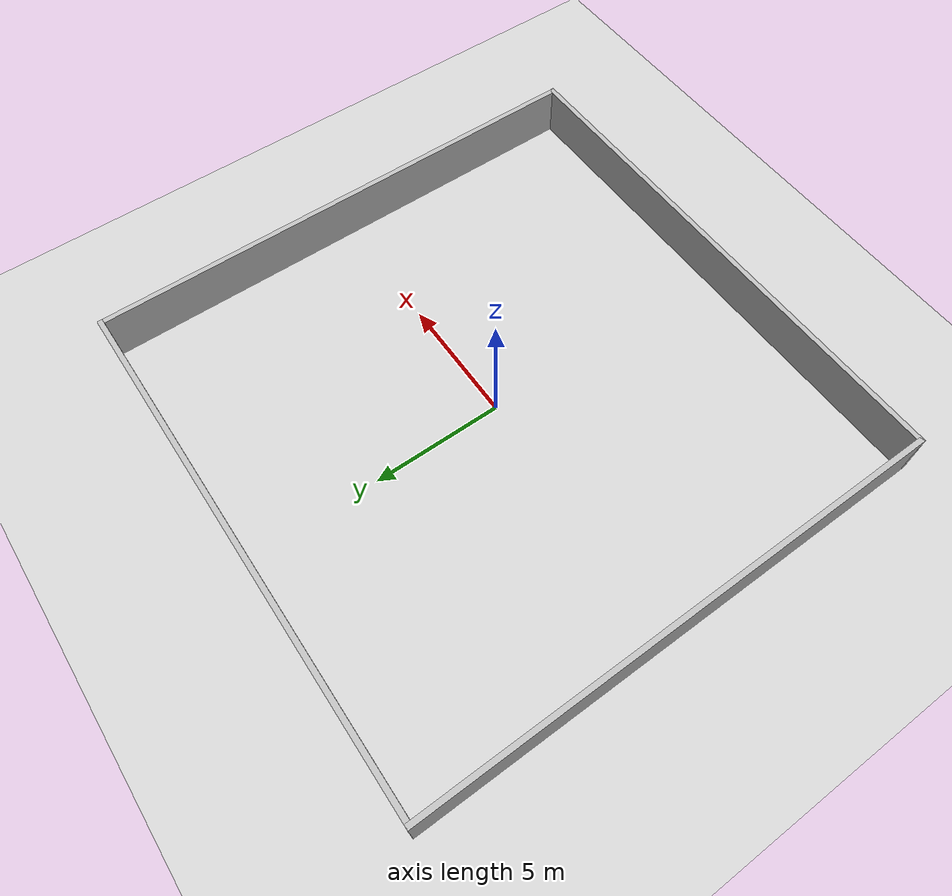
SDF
<?xml version="1.0"?> <!-- ====================== Using emptyWorld.sdf =======================-->
<sdf version="1.6">
  <world name="my_room">
  <plugin
    filename="gz-sim-physics-system"
    name="gz::sim::systems::Physics">
  </plugin>
  <plugin
    filename="gz-sim-user-commands-system"
    name="gz::sim::systems::UserCommands">
  </plugin>
  <plugin
    filename="gz-sim-scene-broadcaster-system"
    name="gz::sim::systems::SceneBroadcaster">
  </plugin>
  <plugin
    filename="gz-sim-sensors-system"
    name="gz::sim::systems::Sensors">
    <render_engine>ogre2</render_engine>
  </plugin>
  <plugin
    filename="gz-sim-imu-system"
    name="gz::sim::systems::Imu">
  </plugin>
    <include>
      <uri>https://fuel.gazebosim.org/1.0/OpenRobotics/models/Ground Plane</uri>
    </include>

    <include>
      <uri>https://fuel.gazebosim.org/1.0/OpenRobotics/models/Sun</uri>
    </include>

    <scene>
      <shadows>false</shadows>
    </scene>

    <gui fullscreen='0'>
      <camera name='user_camera'>
        <pose frame=''>0.319654 -0.235002 9.29441 0 1.5138 0.009599</pose>
        <view_controller>orbit</view_controller>
        <projection_type>perspective</projection_type>
      </camera>
    </gui>

    <physics type="ode">
      <real_time_update_rate>1000.0</real_time_update_rate>
      <max_step_size>0.001</max_step_size>
      <real_time_factor>1</real_time_factor>
      <ode>
        <solver>
          <type>quick</type>
          <iters>150</iters>
          <precon_iters>0</precon_iters>
          <sor>1.400000</sor>
          <use_dynamic_moi_rescaling>1</use_dynamic_moi_rescaling>
        </solver>
        <constraints>
          <cfm>0.00001</cfm>
          <erp>0.2</erp>
          <contact_max_correcting_vel>2000.000000</contact_max_correcting_vel>
          <contact_surface_layer>0.01000</contact_surface_layer>
        </constraints>
      </ode>
    </physics>

  <!-- ===================== Adding 4 walls ===================== -->

    <!-- NORTH WALL: y = +10                               -->

    <model name="wall_north">
      <static>true</static>

      <pose>0 10 1 0 0 0</pose>

      <link name="link">

        <collision name="collision">
          <geometry>
            <box>
              <size>20.2 0.2 2</size>
            </box>
          </geometry>
        </collision>

        <visual name="visual">
          <geometry>
            <box>
              <size>20.2 0.2 2</size>
            </box>
          </geometry>
        </visual>

      </link>
    </model>

    <!-- SOUTH WALL: y = -10                              -->

    <model name="wall_south">
      <static>true</static>

      <pose>0 -10 1 0 0 0</pose>

      <link name="link">
        <collision name="collision">
          <geometry>
            <box>
              <size>20.2 0.2 2</size>
            </box>
          </geometry>
        </collision>

        <visual name="visual">
          <geometry>
            <box>
              <size>20.2 0.2 2</size>
            </box>
          </geometry>
        </visual>

      </link>
    </model>

    <!-- EAST WALL: x = +10                               -->

    <model name="wall_east">
      <static>true</static>

      <pose>10 0 1 0 0 0</pose>

      <link name="link">

        <collision name="collision">
          <geometry>
            <box>
              <size>0.2 20.2 2</size>
            </box>
          </geometry>
        </collision>

        <visual name="visual">
          <geometry>
            <box>
              <size>0.2 20.2 2</size>
            </box>
          </geometry>
        </visual>

      </link>
    </model>

    <!-- WEST WALL: x = -10                               -->

    <model name="wall_west">
      <static>true</static>

      <pose>-10 0 1 0 0 0</pose>

      <link name="link">

        <collision name="collision">
          <geometry>
            <box>
              <size>0.2 20.2 2</size>
            </box>
          </geometry>
        </collision>

        <visual name="visual">
          <geometry>
            <box>
              <size>0.2 20.2 2</size>
            </box>
          </geometry>
        </visual>

      </link>
    </model>

  </world>
</sdf>
